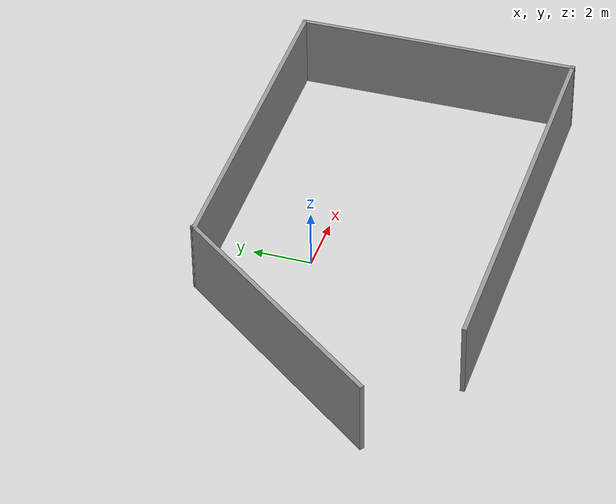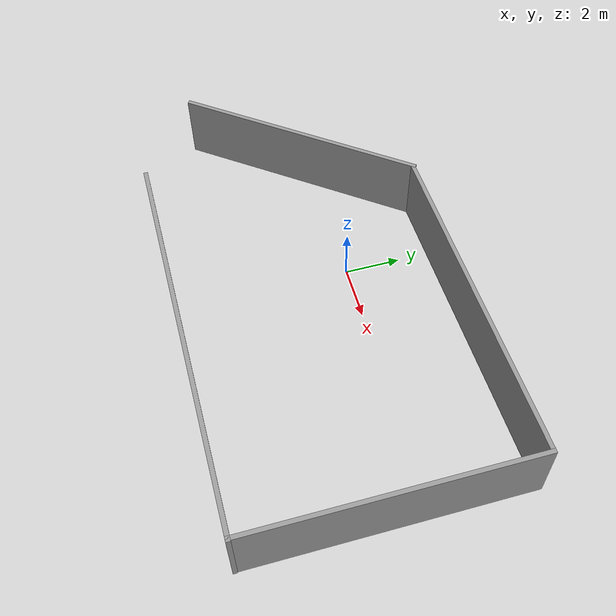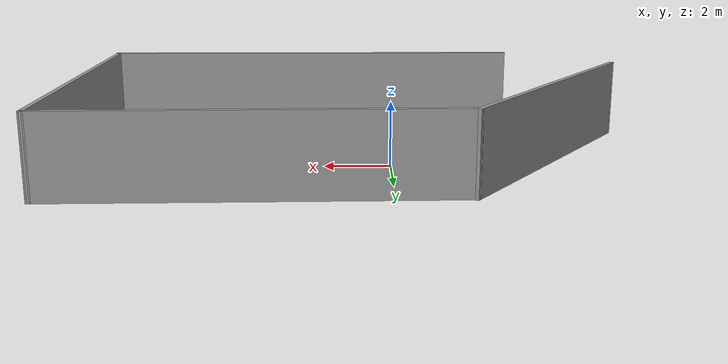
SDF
<?xml version='1.0'?>
<sdf version='1.7'>
  <model name='chota_room'>
    <pose>0.967627 -1.47423 0 0 -0 0</pose>
    <link name='Wall_11'>
      <collision name='Wall_11_Collision'>
        <geometry>
          <box>
            <size>9.23532 0.15 2.5</size>
          </box>
        </geometry>
        <pose>0 0 1.25 0 -0 0</pose>
      </collision>
      <visual name='Wall_11_Visual'>
        <pose>0 0 1.25 0 -0 0</pose>
        <geometry>
          <box>
            <size>9.23532 0.15 2.5</size>
          </box>
        </geometry>
        <material>
          <script>
            <uri>file://media/materials/scripts/gazebo.material</uri>
            <name>Gazebo/Grey</name>
          </script>
          <ambient>1 1 1 1</ambient>
        </material>
        <meta>
          <layer>0</layer>
        </meta>
      </visual>
      <pose>-5.92395 1.04507 0 0 -0 0.912759</pose>
    </link>
    <link name='Wall_12'>
      <collision name='Wall_12_Collision'>
        <geometry>
          <box>
            <size>11.9862 0.15 2.5</size>
          </box>
        </geometry>
        <pose>0 0 1.25 0 -0 0</pose>
      </collision>
      <visual name='Wall_12_Visual'>
        <pose>0 0 1.25 0 -0 0</pose>
        <geometry>
          <box>
            <size>11.9862 0.15 2.5</size>
          </box>
        </geometry>
        <material>
          <script>
            <uri>file://media/materials/scripts/gazebo.material</uri>
            <name>Gazebo/Grey</name>
          </script>
          <ambient>1 1 1 1</ambient>
        </material>
        <meta>
          <layer>0</layer>
        </meta>
      </visual>
      <pose>2.77142 4.69988 0 0 -0 0.017091</pose>
    </link>
    <link name='Wall_13'>
      <collision name='Wall_13_Collision'>
        <geometry>
          <box>
            <size>9.75322 0.15 2.5</size>
          </box>
        </geometry>
        <pose>0 0 1.25 0 -0 0</pose>
      </collision>
      <visual name='Wall_13_Visual'>
        <pose>0 0 1.25 0 -0 0</pose>
        <geometry>
          <box>
            <size>9.75322 0.15 2.5</size>
          </box>
        </geometry>
        <material>
          <script>
            <uri>file://media/materials/scripts/gazebo.material</uri>
            <name>Gazebo/Grey</name>
          </script>
          <ambient>1 1 1 1</ambient>
        </material>
        <meta>
          <layer>0</layer>
        </meta>
      </visual>
      <pose>8.71741 -0.000508 0 0 -0 -1.57324</pose>
    </link>
    <link name='Wall_14'>
      <collision name='Wall_14_Collision'>
        <geometry>
          <box>
            <size>14.25 0.15 2.5</size>
          </box>
        </geometry>
        <pose>0 0 1.25 0 -0 0</pose>
      </collision>
      <visual name='Wall_14_Visual'>
        <pose>0 0 1.25 0 -0 0</pose>
        <geometry>
          <box>
            <size>14.25 0.15 2.5</size>
          </box>
        </geometry>
        <material>
          <script>
            <uri>file://media/materials/scripts/gazebo.material</uri>
            <name>Gazebo/Grey</name>
          </script>
          <ambient>1 1 1 1</ambient>
        </material>
        <meta>
          <layer>0</layer>
        </meta>
      </visual>
      <pose>1.6823 -4.80203 0 0 -0 3.14159</pose>
    </link>
    <static>1</static>
  </model>
</sdf>
